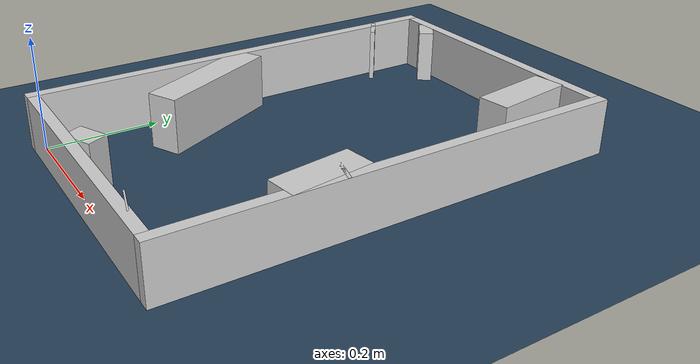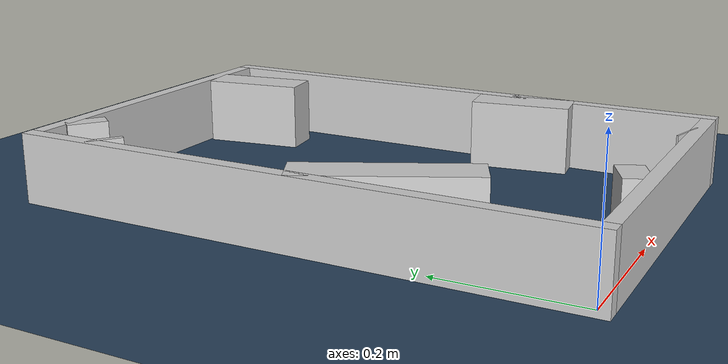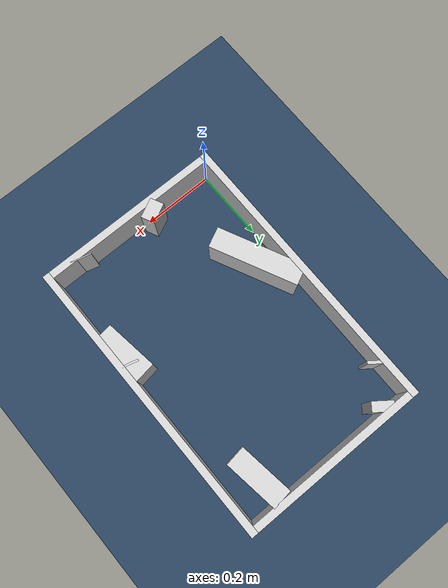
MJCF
<?xml version="1.0" ?>
<mujoco model="generated_real_template">
  <compiler angle="degree"/>
  <option timestep="0.002" integrator="implicitfast" iterations="100" cone="elliptic"/>
  <default>
    <geom density="1"/>
  </default>
  <asset>
    <texture builtin="gradient" height="3072" rgb1="0.3 0.5 0.7" rgb2="0 0 0" type="skybox" width="512"/>
    <texture builtin="checker" height="300" mark="edge" markrgb="0.8 0.8 0.8" name="groundplane" rgb1="0.2 0.3 0.4" rgb2="0.1 0.2 0.3" type="2d" width="300"/>
    <material name="groundplane" reflectance="0.2" texrepeat="5 5" texture="groundplane" texuniform="true"/>
  </asset>
  <worldbody>
    <light dir="0 0 -1" directional="true" pos="0 0 1.5"/>
    <geom name="floor" type="plane" condim="4" friction="0.5 0.005 0.001" material="groundplane" size="0 0 0.05"/>
    <body name="walls">
      <geom name="wall_boundary_left" type="box" condim="4" friction="1.0 0.005 0.0001" rgba="0.8 0.8 0.8 1" pos="-0.010000 0.387500 0.050000" euler="0 0 0.000000" size="0.010000 0.407500 0.050000"/>
      <geom name="wall_boundary_right" type="box" condim="4" friction="1.0 0.005 0.0001" rgba="0.8 0.8 0.8 1" pos="0.500000 0.387500 0.050000" euler="0 0 0.000000" size="0.010000 0.407500 0.050000"/>
      <geom name="wall_boundary_bottom" type="box" condim="4" friction="1.0 0.005 0.0001" rgba="0.8 0.8 0.8 1" pos="0.245000 -0.010000 0.050000" euler="0 0 0.000000" size="0.245000 0.010000 0.050000"/>
      <geom name="wall_boundary_top" type="box" condim="4" friction="1.0 0.005 0.0001" rgba="0.8 0.8 0.8 1" pos="0.245000 0.785000 0.050000" euler="0 0 0.000000" size="0.245000 0.010000 0.050000"/>
      <geom name="wall_inner_1_1" type="box" condim="4" friction="1.0 0.005 0.0001" rgba="0.8 0.8 0.8 1" pos="0.069934 0.764025 0.050000" euler="0 0 -126.808475" size="0.013708 0.028500 0.050000"/>
      <geom name="wall_inner_1_2" type="box" condim="4" friction="1.0 0.005 0.0001" rgba="0.8 0.8 0.8 1" pos="0.005366 0.677742 0.050000" euler="0 0 -126.808475" size="0.004251 0.028500 0.050000"/>
      <geom name="wall_inner_2_1" type="box" condim="4" friction="1.0 0.005 0.0001" rgba="0.8 0.8 0.8 1" pos="0.059158 0.281533 0.050000" euler="0 0 -64.104896" size="0.122546 0.028500 0.050000"/>
      <geom name="wall_inner_2_2" type="box" condim="4" friction="1.0 0.005 0.0001" rgba="0.8 0.8 0.8 1" pos="0.187498 0.017170 0.050000" euler="0 0 -64.104896" size="0.019087 0.028500 0.050000"/>
      <geom name="wall_inner_3_1" type="box" condim="4" friction="1.0 0.005 0.0001" rgba="0.8 0.8 0.8 1" pos="0.409243 0.700074 0.050000" euler="0 0 -81.930438" size="0.075676 0.028500 0.050000"/>
      <geom name="wall_inner_3_2" type="box" condim="4" friction="1.0 0.005 0.0001" rgba="0.8 0.8 0.8 1" pos="0.471514 0.260860 0.050000" euler="0 0 -81.930438" size="0.073139 0.028500 0.050000"/>
      <geom name="wall_inner_4_1" type="box" condim="4" friction="1.0 0.005 0.0001" rgba="0.8 0.8 0.8 1" pos="0.405423 0.001346 0.050000" euler="0 0 75.217317" size="0.001392 0.028500 0.050000"/>
      <geom name="wall_inner_4_2" type="box" condim="4" friction="1.0 0.005 0.0001" rgba="0.8 0.8 0.8 1" pos="0.481724 0.290487 0.050000" euler="0 0 75.217317" size="0.002814 0.028500 0.050000"/>
    </body>
  </worldbody>
</mujoco>
